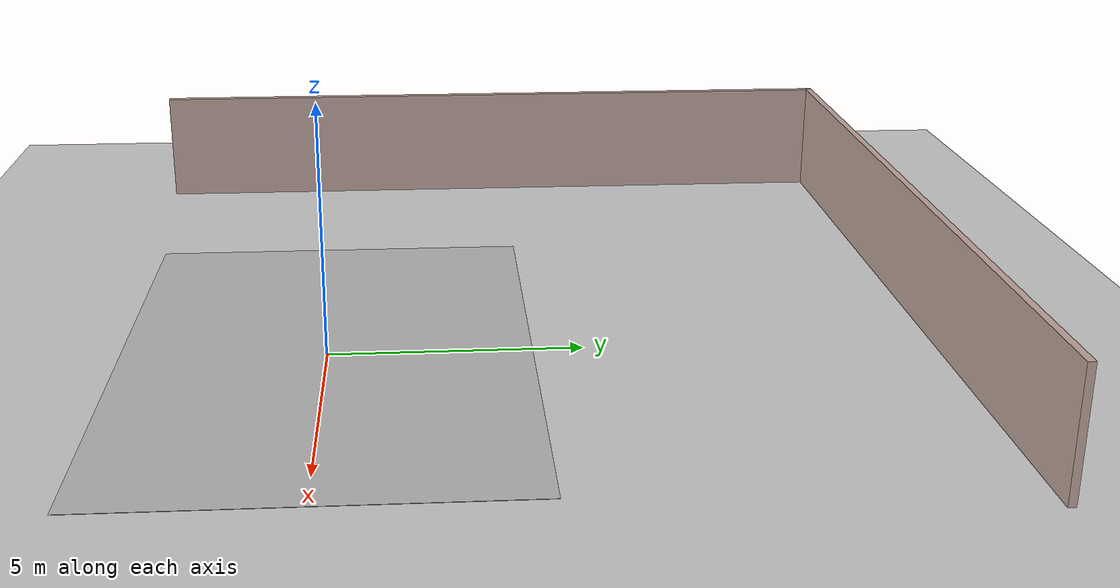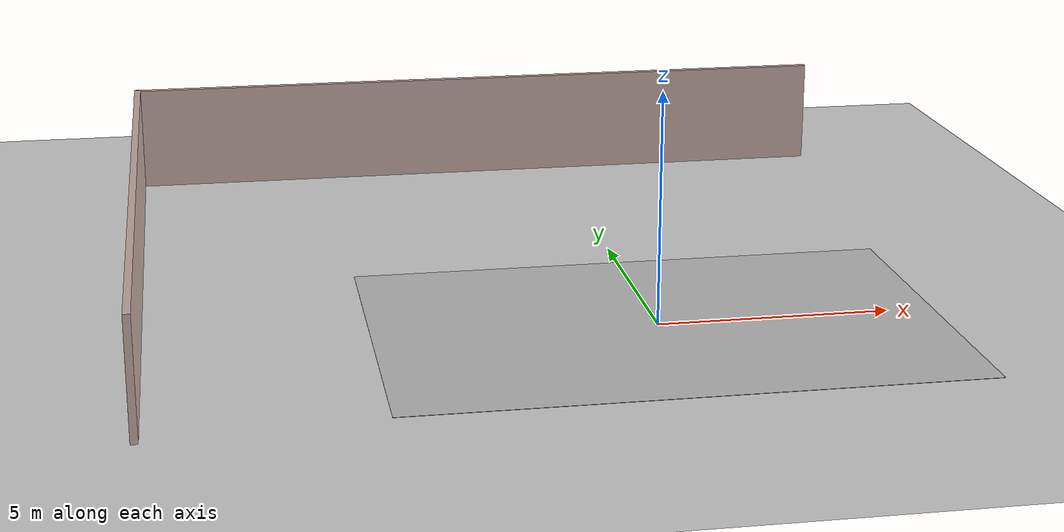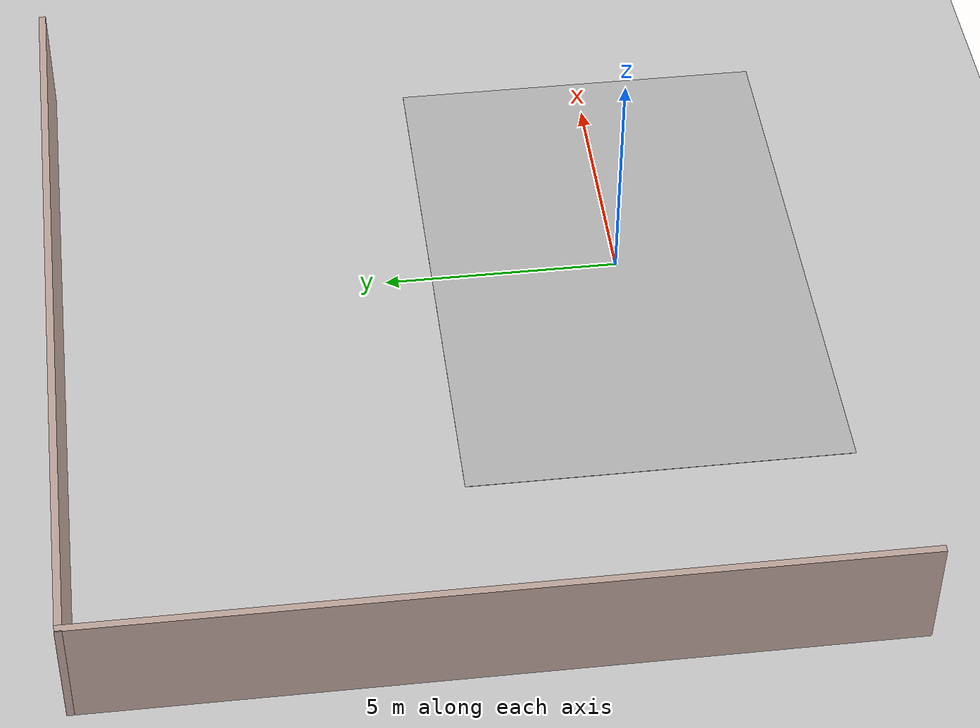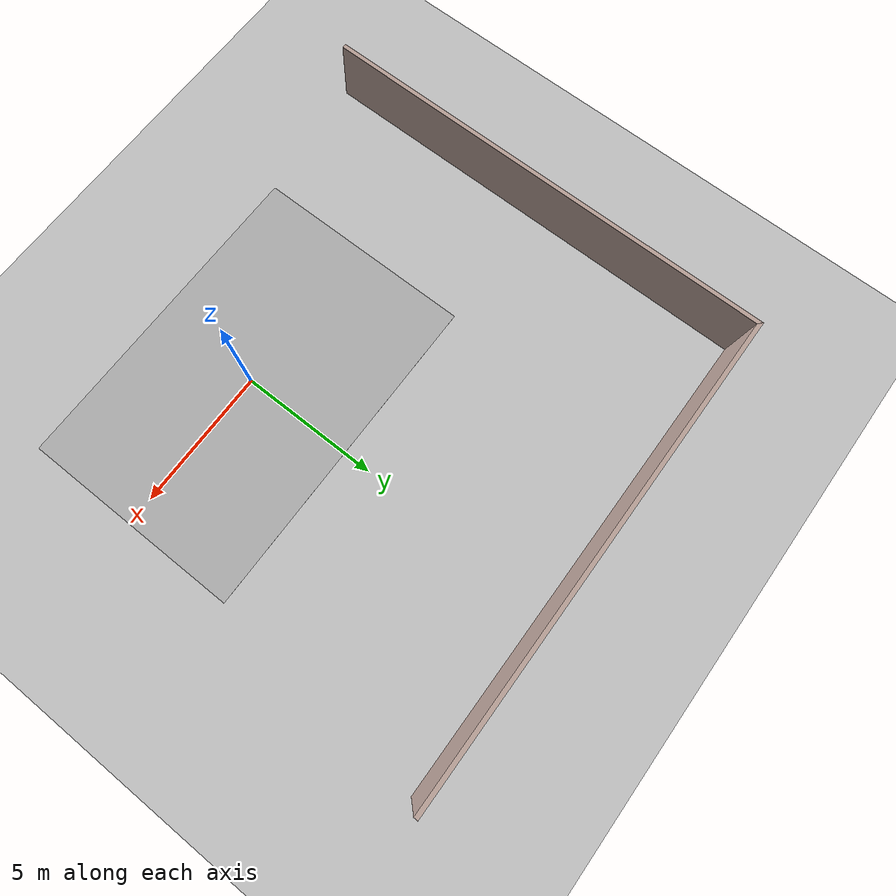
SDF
<?xml version="1.0" ?>
<sdf version="1.5">
  <world name="default">

    <!-- Habilita /get_entity_state y /set_entity_state (ROS 2). Ver
         gazebo_static_obstacles / dynamic_obstacles en bring_up. -->
    <plugin name="gazebo_ros_state" filename="libgazebo_ros_state.so">
      <update_rate>10.0</update_rate>
    </plugin>

    <include>
      <uri>model://ground_plane</uri>
      <pose> 0 0 -.0001 0 0 0 </pose>
    </include>

    <light name="inner_point_white1" type="point">
      <pose>5 3 4 0 0 0</pose>
      <diffuse>0.2 0.2 0.2 1</diffuse>
      <specular>0.1 0.1 0.1 1</specular>
      <attenuation>
        <range>20</range>
        <linear>0.1</linear>
        <constant>0.2</constant>
        <quadratic>0</quadratic>
      </attenuation>
      <cast_shadows>0</cast_shadows>
      <direction>0 0 -1</direction>
    </light>
    <light name="inner_point_white2" type="point">
      <pose>0 3 4 0 0 0</pose>
      <diffuse>0.2 0.2 0.2 1</diffuse>
      <specular>0.1 0.1 0.1 1</specular>
      <attenuation>
        <range>20</range>
        <linear>0.1</linear>
        <constant>0.2</constant>
        <quadratic>0</quadratic>
      </attenuation>
      <cast_shadows>0</cast_shadows>
      <direction>0 0 -1</direction>
    </light>
    <light name="inner_point_white3" type="point">
      <pose>-5 3 4 0 0 0</pose>
      <diffuse>0.2 0.2 0.2 1</diffuse>
      <specular>0.1 0.1 0.1 1</specular>
      <attenuation>
        <range>20</range>
        <linear>0.1</linear>
        <constant>0.2</constant>
        <quadratic>0</quadratic>
      </attenuation>
      <cast_shadows>0</cast_shadows>
      <direction>0 0 -1</direction>
    </light>
    <light name="inner_point_white4" type="point">
      <pose>-5 -3 4 0 0 0</pose>
      <diffuse>0.2 0.2 0.2 1</diffuse>
      <specular>0.1 0.1 0.1 1</specular>
      <attenuation>
        <range>20</range>
        <linear>0.1</linear>
        <constant>0.2</constant>
        <quadratic>0</quadratic>
      </attenuation>
      <cast_shadows>0</cast_shadows>
      <direction>0 0 -1</direction>
    </light>
    <light name="inner_point_white5" type="point">
      <pose>0 -3 4 0 0 0</pose>
      <diffuse>0.2 0.2 0.2 1</diffuse>
      <specular>0.1 0.1 0.1 1</specular>
      <attenuation>
        <range>20</range>
        <linear>0.1</linear>
        <constant>0.2</constant>
        <quadratic>0</quadratic>
      </attenuation>
      <cast_shadows>0</cast_shadows>
      <direction>0 0 -1</direction>
    </light>
    <light name="inner_point_white6" type="point">
      <pose>5 -3 4 0 0 0</pose>
      <diffuse>0.2 0.2 0.2 1</diffuse>
      <specular>0.1 0.1 0.1 1</specular>
      <attenuation>
        <range>20</range>
        <linear>0.1</linear>
        <constant>0.2</constant>
        <quadratic>0</quadratic>
      </attenuation>
      <cast_shadows>0</cast_shadows>
      <direction>0 0 -1</direction>
    </light>

    <include>
      <uri>model://pista_tmr_2021</uri>
      <pose> 0 0 0.01 0 0 0 </pose>
      <name>PistaTMR2021</name>
    </include>

    <include>
      <static>1</static>
      <pose>-2.0 3.82 0 0 0 0</pose>
      <uri>model://wall</uri>
      <name>parking_wall</name>
    </include>

    <gui fullscreen="0">
      <camera name="user_camera">
        <pose>1.15 1.93 2.85 0 1.08 1.07</pose>
        <view_controller>orbit</view_controller>
      </camera>
    </gui>
  </world>
</sdf>

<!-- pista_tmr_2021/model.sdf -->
<sdf version="1.4">
	<model name="pista_tmr_2021">
		<static>true</static>
		<link name="pista_link">
			<collision name="collision">
				<geometry>
					<plane>
						<normal>0 0 1</normal>
						<size>12 8</size>
					</plane>
				</geometry>
				<surface>
					<friction>
						<ode>
							<mu>100</mu>
							<mu2>50</mu2>
						</ode>
					</friction>
				</surface>
			</collision>
			<visual name="visual">
				<geometry>
					<plane>
						<normal>0 0 1</normal>
						<size>12 8</size>
					</plane>
				</geometry>
				<material>
					<script>
						<uri>model://pista_tmr_2021/materials/scripts</uri>
						<uri>model://pista_tmr_2021/materials/textures</uri>
						<name>pista_tmr_2021/Image</name>
					</script>
				</material>
			</visual>
		</link>
	</model>
</sdf>

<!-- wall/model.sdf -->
<sdf version='1.6'>
  <model name='wall'>
    <pose frame=''>-1.26581 1.80502 0 0 -0 0</pose>
    <link name='Wall_0'>
      <collision name='Wall_0_Collision'>
        <geometry>
          <box>
            <size>16.5 0.15 2.5</size>
          </box>
        </geometry>
        <pose frame=''>0 0 1.25 0 -0 0</pose>
      </collision>
      <visual name='Wall_0_Visual'>
        <pose frame=''>0 0 1.25 0 -0 0</pose>
        <geometry>
          <box>
            <size>16.5 0.15 2.5</size>
          </box>
        </geometry>
        <material>
          <script>
            <uri>file://media/materials/scripts/gazebo.material</uri>
            <name>Gazebo/Grey</name>
          </script>
          <ambient>0.760784 0.662745 0.627451 1</ambient>
        </material>
        <meta>
          <layer>0</layer>
        </meta>
      </visual>
      <pose frame=''>-8.71419 -1.8e-05 0 0 0 -1.5708</pose>
    </link>
    <link name='Wall_2'>
      <collision name='Wall_2_Collision'>
        <geometry>
          <box>
            <size>17.5784 0.15 2.5</size>
          </box>
        </geometry>
        <pose frame=''>0 0 1.25 0 -0 0</pose>
      </collision>
      <visual name='Wall_2_Visual'>
        <pose frame=''>0 0 1.25 0 -0 0</pose>
        <geometry>
          <box>
            <size>17.5784 0.15 2.5</size>
          </box>
        </geometry>
        <material>
          <script>
            <uri>file://media/materials/scripts/gazebo.material</uri>
            <name>Gazebo/Grey</name>
          </script>
          <ambient>0.760784 0.662745 0.627451 1</ambient>
        </material>
        <meta>
          <layer>0</layer>
        </meta>
      </visual>
      <pose frame=''>0 8.17066 0 0 0 -0.000496</pose>
    </link>
    <static>1</static>
  </model>
</sdf>
